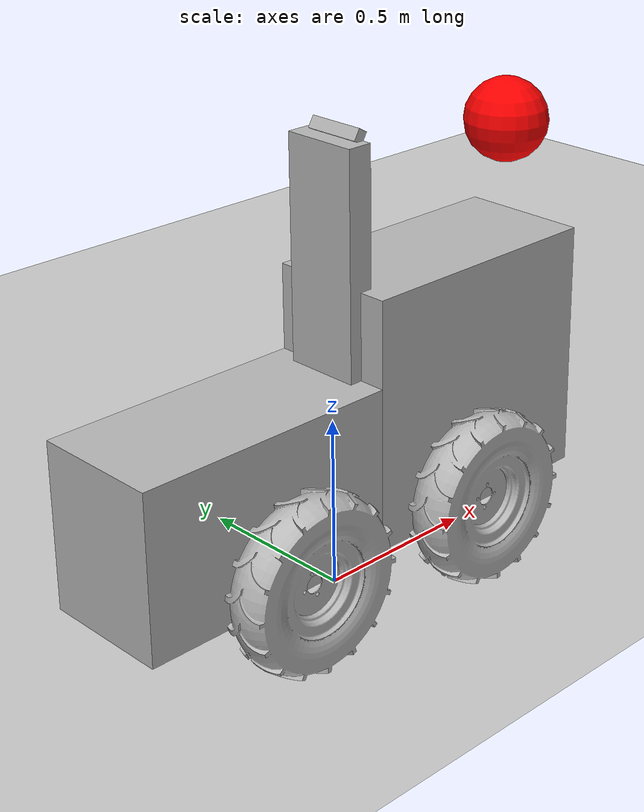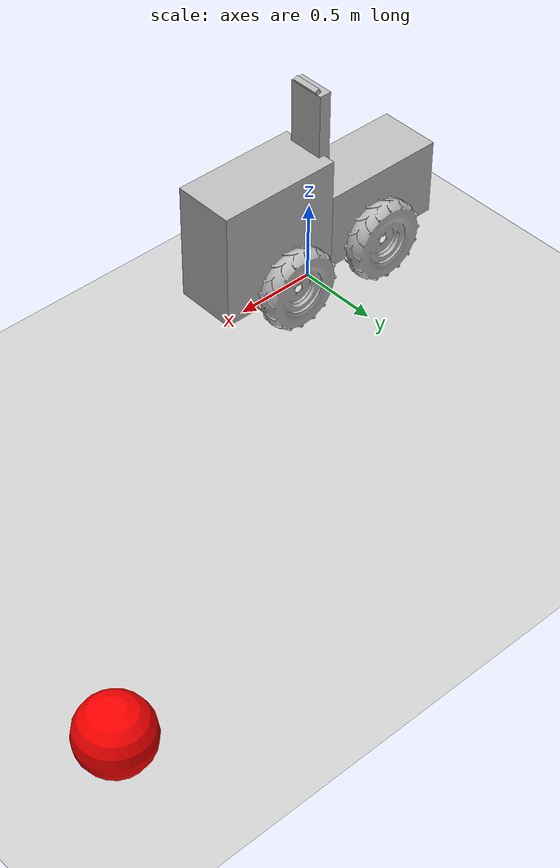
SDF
<?xml version="1.0"?>
<sdf version="1.9">

    <world name="car_world">

        <!-- Physics -->
        <physics name="1ms" type="ignored">

            <max_step_size>0.001</max_step_size>

            <real_time_factor>1.0</real_time_factor>

        </physics>

        <!-- Core Systems -->
        <plugin
            filename="gz-sim-physics-system"
            name="gz::sim::systems::Physics">
        </plugin>

        <plugin
            filename="gz-sim-user-commands-system"
            name="gz::sim::systems::UserCommands">
        </plugin>

        <plugin
            filename="gz-sim-scene-broadcaster-system"
            name="gz::sim::systems::SceneBroadcaster">
        </plugin>

        <!-- Sensors -->
        <plugin
            filename="gz-sim-sensors-system"
            name="gz::sim::systems::Sensors">

            <render_engine>ogre2</render_engine>

        </plugin>

        <!-- Sun -->
        <light type="directional" name="sun">

            <cast_shadows>true</cast_shadows>

            <pose>0 0 10 0 0 0</pose>

            <diffuse>0.8 0.8 0.8 1</diffuse>

            <specular>0.2 0.2 0.2 1</specular>

            <attenuation>

                <range>1000</range>

                <constant>0.9</constant>

                <linear>0.01</linear>

                <quadratic>0.001</quadratic>

            </attenuation>

            <direction>-0.5 0.1 -0.9</direction>

        </light>

        <!-- Ground -->
        <model name="ground_plane">

            <static>true</static>

            <link name="link">

                <collision name="collision">

                    <geometry>

                        <plane>

                            <normal>0 0 1</normal>

                        </plane>

                    </geometry>

                </collision>

                <visual name="visual">

                    <geometry>

                        <plane>

                            <normal>0 0 1</normal>

                            <size>100 100</size>

                        </plane>

                    </geometry>

                    <material>

                        <ambient>0.8 0.8 0.8 1</ambient>

                        <diffuse>0.8 0.8 0.8 1</diffuse>

                        <specular>0.8 0.8 0.8 1</specular>

                    </material>

                </visual>

            </link>

        </model>

        <!-- Robot -->
        <include>

            <uri>
                file:///home/suprabha/diffbot_ws/src/diffbot_description/urdf/r1_eval.sdf
            </uri>

            <pose>0 0 0 0 0 0</pose>

        </include>

        <!-- Red Ball -->
        <model name="red_ball">

            <static>false</static>

            <pose>3 2 0.3 0 0 0</pose>

            <link name="link">

                <!-- Physics -->
                <inertial>

                    <mass>1.0</mass>

                    <inertia>

                        <ixx>0.01</ixx>
                        <iyy>0.01</iyy>
                        <izz>0.01</izz>

                    </inertia>

                </inertial>

                <!-- Collision -->
                <collision name="collision">

                    <geometry>

                        <sphere>

                            <radius>0.2</radius>

                        </sphere>

                    </geometry>

                </collision>

                <!-- Visual -->
                <visual name="visual">

                    <geometry>

                        <sphere>

                            <radius>0.2</radius>

                        </sphere>

                    </geometry>

                    <material>

                        <ambient>1 0 0 1</ambient>

                        <diffuse>1 0 0 1</diffuse>

                    </material>

                </visual>

            </link>

        </model>

    </world>

</sdf>

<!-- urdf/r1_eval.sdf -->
<sdf version='1.7'>
  <model name='fr_robot_sim_r1'>
    <link name='base_footprint'>
      <inertial>
        <pose>0.07194 0 0.502585 0 -0 0</pose>
        <mass>321.7</mass>
        <inertia>
          <ixx>20.8245</ixx>
          <ixy>0</ixy>
          <ixz>-7.04992</ixz>
          <iyy>75.4832</iyy>
          <iyz>0</iyz>
          <izz>67.8275</izz>
        </inertia>
      </inertial>
      <collision name='base_footprint_fixed_joint_lump__bonnet_collision'>
        <pose>0.385 0 0.5405 0 -0 0</pose>
        <geometry>
          <box>
            <size>0.77 0.38 0.731</size>
          </box>
        </geometry>
      </collision>
      <collision name='base_footprint_fixed_joint_lump__carrier_collision_1'>
        <pose>-0.3915 0 0.4155 0 -0 0</pose>
        <geometry>
          <box>
            <size>0.783 0.38 0.481</size>
          </box>
        </geometry>
      </collision>
      <collision name='base_footprint_fixed_joint_lump__pole_collision_2'>
        <pose>0 0 0.9785 0 -0 0</pose>
        <geometry>
          <box>
            <size>0.075 0.224 0.645</size>
          </box>
        </geometry>
      </collision>
      <collision name='base_footprint_fixed_joint_lump__stereo_cam_collision_3'>
        <pose>0.029 0 1.314 0 0.5236 0</pose>
        <geometry>
          <box>
            <size>0.03 0.17 0.035</size>
          </box>
        </geometry>
      </collision>
      <visual name='base_footprint_fixed_joint_lump__bonnet_visual'>
        <pose>0.385 0 0.5405 0 -0 0</pose>
        <geometry>
          <box>
            <size>0.77 0.38 0.731</size>
          </box>
        </geometry>
      </visual>
      <visual name='base_footprint_fixed_joint_lump__carrier_visual_1'>
        <pose>-0.3915 0 0.4155 0 -0 0</pose>
        <geometry>
          <box>
            <size>0.783 0.38 0.481</size>
          </box>
        </geometry>
      </visual>
      <visual name='base_footprint_fixed_joint_lump__pole_visual_2'>
        <pose>0 0 0.9785 0 -0 0</pose>
        <geometry>
          <box>
            <size>0.075 0.224 0.645</size>
          </box>
        </geometry>
      </visual>
      <visual name='base_footprint_fixed_joint_lump__stereo_cam_visual_3'>
        <pose>0.029 0 1.314 0 0.5236 0</pose>
        <geometry>
          <box>
            <size>0.03 0.17 0.035</size>
          </box>
        </geometry>
      </visual>

<!-- RGB CAMERA -->
<sensor name="rgb_camera" type="camera">

  <pose>0.029 0 1.314 0 0.5236 0</pose>

  <always_on>true</always_on>
  <update_rate>30</update_rate>
  <visualize>true</visualize>

  <topic>/camera</topic>

  <camera_info_topic>/camera_info</camera_info_topic>

  <camera>

    <horizontal_fov>1.5707</horizontal_fov>

    <image>
      <width>640</width>
      <height>480</height>
      <format>R8G8B8</format>
    </image>

    <clip>
      <near>0.05</near>
      <far>20.0</far>
    </clip>

  </camera>

</sensor>

<!-- DEPTH CAMERA -->
<sensor name="depth_camera" type="depth_camera">

  <always_on>true</always_on>

  <update_rate>30</update_rate>

  <visualize>true</visualize>

  <topic>/depth_camera</topic>

  <camera>

    <horizontal_fov>1.5707</horizontal_fov>

    <image>
      <width>640</width>
      <height>480</height>
      <format>R_FLOAT32</format>
    </image>

    <clip>
      <near>0.1</near>
      <far>20.0</far>
    </clip>

  </camera>

</sensor>

    </link>
    <joint name='bl_whl_j' type='revolute'>
      <pose relative_to='base_footprint'>-0.32489 0.32852 0.24872 0 -0 0</pose>
      <parent>base_footprint</parent>
      <child>bl_whl</child>
      <axis>
        <xyz>0 1 0</xyz>
        <limit>
          <lower>-1e+16</lower>
          <upper>1e+16</upper>
        </limit>
        <dynamics>
          <spring_reference>0</spring_reference>
          <spring_stiffness>0</spring_stiffness>
        </dynamics>
      </axis>
    </joint>
    <link name='bl_whl'>
      <pose relative_to='bl_whl_j'>0 0 0 0 -0 0</pose>
      <inertial>
        <pose>-0 -0.064989 0 0 -0 0</pose>
        <mass>7.06811</mass>
        <inertia>
          <ixx>0.15338</ixx>
          <ixy>3.16018e-13</ixy>
          <ixz>6.13748e-07</ixz>
          <iyy>0.27779</iyy>
          <iyz>9.01915e-15</iyz>
          <izz>0.153378</izz>
        </inertia>
      </inertial>
      <collision name='bl_whl_collision'>
        <pose>0 0 0 0 -0 0</pose>
        <geometry>
          <mesh>
            <scale>1 1 1</scale>
            <uri>file:///home/suprabha/diffbot_ws/src/diffbot_description/meshes/visual/bl_whl.STL</uri>
          </mesh>
        </geometry>
      </collision>
      <visual name='bl_whl_visual'>
        <pose>0 0 0 0 -0 0</pose>
        <geometry>
          <mesh>
            <scale>1 1 1</scale>
            <uri>file:///home/suprabha/diffbot_ws/src/diffbot_description/meshes/visual/bl_whl.STL</uri>
          </mesh>
        </geometry>
      </visual>
    </link>
    <joint name='br_whl_j' type='revolute'>
      <pose relative_to='base_footprint'>-0.32489 -0.32873 0.24872 0 -0 0</pose>
      <parent>base_footprint</parent>
      <child>br_whl</child>
      <axis>
        <xyz>0 1 0</xyz>
        <limit>
          <lower>-1e+16</lower>
          <upper>1e+16</upper>
        </limit>
        <dynamics>
          <spring_reference>0</spring_reference>
          <spring_stiffness>0</spring_stiffness>
        </dynamics>
      </axis>
    </joint>
    <link name='br_whl'>
      <pose relative_to='br_whl_j'>0 0 0 0 -0 0</pose>
      <inertial>
        <pose>-0 0.064989 -0 0 -0 0</pose>
        <mass>7.06811</mass>
        <inertia>
          <ixx>0.153379</ixx>
          <ixy>3.29634e-14</ixy>
          <ixz>7.67693e-07</ixz>
          <iyy>0.27779</iyy>
          <iyz>-2.50307e-14</iyz>
          <izz>0.153378</izz>
        </inertia>
      </inertial>
      <collision name='br_whl_collision'>
        <pose>0 0 0 0 -0 0</pose>
        <geometry>
          <mesh>
            <scale>1 1 1</scale>
            <uri>file:///home/suprabha/diffbot_ws/src/diffbot_description/meshes/visual/br_whl.STL</uri>
          </mesh>
        </geometry>
      </collision>
      <visual name='br_whl_visual'>
        <pose>0 0 0 0 -0 0</pose>
        <geometry>
          <mesh>
            <scale>1 1 1</scale>
           <uri>file:///home/suprabha/diffbot_ws/src/diffbot_description/meshes/visual/br_whl.STL</uri>
          </mesh>
        </geometry>
      </visual>
    </link>
    <joint name='fl_whl_j' type='revolute'>
      <pose relative_to='base_footprint'>0.32511 0.32852 0.24872 0 -0 0</pose>
      <parent>base_footprint</parent>
      <child>fl_whl</child>
      <axis>
        <xyz>0 1 0</xyz>
        <limit>
          <lower>-1e+16</lower>
          <upper>1e+16</upper>
        </limit>
        <dynamics>
          <spring_reference>0</spring_reference>
          <spring_stiffness>0</spring_stiffness>
        </dynamics>
      </axis>
    </joint>
    <link name='fl_whl'>
      <pose relative_to='fl_whl_j'>0 0 0 0 -0 0</pose>
      <inertial>
        <pose>-0 -0.064989 -0 0 -0 0</pose>
        <mass>7.06811</mass>
        <inertia>
          <ixx>0.153378</ixx>
          <ixy>3.48878e-13</ixy>
          <ixz>-7.25942e-07</ixz>
          <iyy>0.27779</iyy>
          <iyz>1.67204e-13</iyz>
          <izz>0.153379</izz>
        </inertia>
      </inertial>
      <collision name='fl_whl_collision'>
        <pose>0 0 0 0 -0 0</pose>
        <geometry>
          <mesh>
            <scale>1 1 1</scale>
            <uri>file:///home/suprabha/diffbot_ws/src/diffbot_description/meshes/visual/fl_whl.STL</uri>
          </mesh>
        </geometry>
      </collision>
      <visual name='fl_whl_visual'>
        <pose>0 0 0 0 -0 0</pose>
        <geometry>
          <mesh>
            <scale>1 1 1</scale>
            <uri>file:///home/suprabha/diffbot_ws/src/diffbot_description/meshes/visual/fl_whl.STL</uri>
          </mesh>
        </geometry>
      </visual>
    </link>
    <joint name='fr_whl_j' type='revolute'>
      <pose relative_to='base_footprint'>0.32511 -0.32873 0.24872 0 -0 0</pose>
      <parent>base_footprint</parent>
      <child>fr_whl</child>
      <axis>
        <xyz>0 1 0</xyz>
        <limit>
          <lower>-1e+16</lower>
          <upper>1e+16</upper>
        </limit>
        <dynamics>
          <spring_reference>0</spring_reference>
          <spring_stiffness>0</spring_stiffness>
        </dynamics>
      </axis>
    </joint>
    <link name='fr_whl'>
      <pose relative_to='fr_whl_j'>0 0 0 0 -0 0</pose>
      <inertial>
        <pose>0 0.064989 -0 0 -0 0</pose>
        <mass>7.06811</mass>
        <inertia>
          <ixx>0.153378</ixx>
          <ixy>3.27659e-14</ixy>
          <ixz>-8.9593e-08</ixz>
          <iyy>0.27779</iyy>
          <iyz>-3.70758e-14</iyz>
          <izz>0.15338</izz>
        </inertia>
      </inertial>
      <collision name='fr_whl_collision'>
        <pose>0 0 0 0 -0 0</pose>
        <geometry>
          <mesh>
            <scale>1 1 1</scale>
            <uri>file:///home/suprabha/diffbot_ws/src/diffbot_description/meshes/visual/fr_whl.STL</uri>
          </mesh>
        </geometry>
      </collision>
      <visual name='fr_whl_visual'>
        <pose>0 0 0 0 -0 0</pose>
        <geometry>
          <mesh>
            <scale>1 1 1</scale>
            <uri>file:///home/suprabha/diffbot_ws/src/diffbot_description/meshes/visual/fr_whl.STL</uri>
          </mesh>
        </geometry>
      </visual>
    </link>
     <plugin filename="libignition-gazebo-diff-drive-system.so"
        name="ignition::gazebo::systems::DiffDrive">

      <update_rate>50</update_rate>

      <left_joint>fl_whl_j</left_joint>
      <left_joint>bl_whl_j</left_joint>

      <right_joint>fr_whl_j</right_joint>
      <right_joint>br_whl_j</right_joint>

      <wheel_separation>0.65725</wheel_separation>

      <wheel_radius>0.065</wheel_radius>

      <max_wheel_torque>15</max_wheel_torque>

      <max_wheel_acceleration>1.0</max_wheel_acceleration>

      <publish_odom>true</publish_odom>

      <publish_odom_tf>true</publish_odom_tf>

      <publish_wheel_tf>true</publish_wheel_tf>

      <odometry_frame>odom</odometry_frame>

      <odom_publish_frequency>30</odom_publish_frequency>

      <robot_base_frame>base_footprint</robot_base_frame>

      <topic>cmd_vel</topic>

      <odom_topic>odom</odom_topic>

</plugin>

<plugin filename="libignition-gazebo-joint-state-publisher-system.so"
        name="ignition::gazebo::systems::JointStatePublisher"/>

<plugin filename="libignition-gazebo-pose-publisher-system.so"
        name="ignition::gazebo::systems::PosePublisher">

      <publish_link_pose>false</publish_link_pose>

      <publish_sensor_pose>false</publish_sensor_pose>

      <publish_model_pose>false</publish_model_pose>

      <use_pose_vector_msg>true</use_pose_vector_msg>

</plugin>

  </model>

</sdf>
